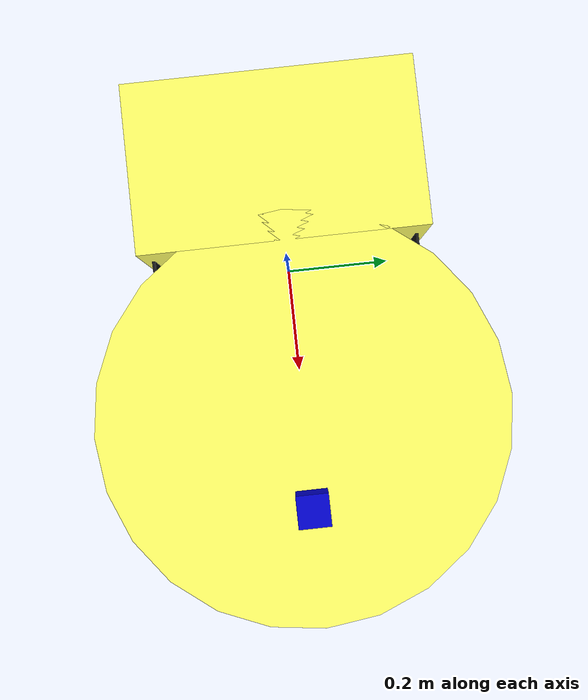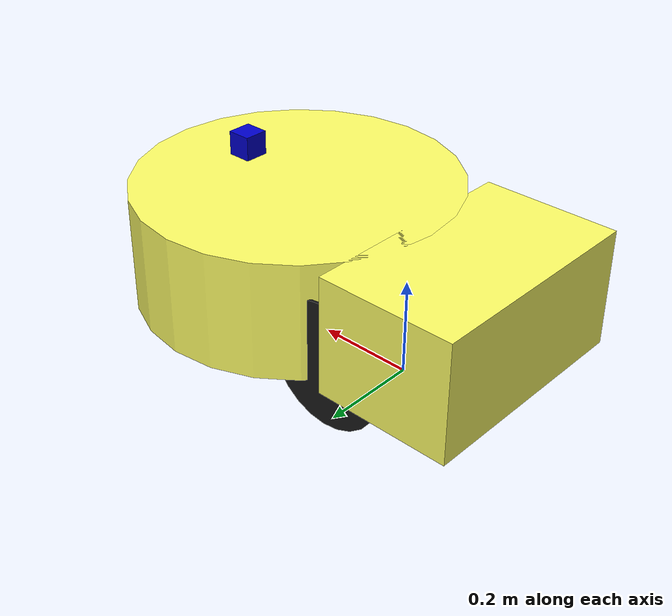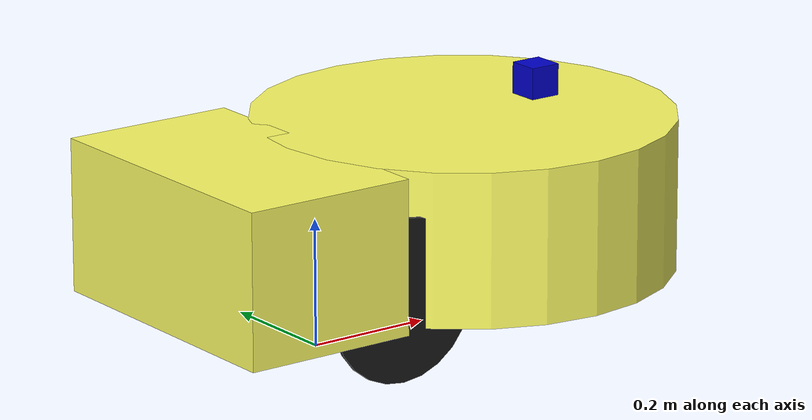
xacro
<?xml version="1.0"?>

<robot xmlns:xacro="http://ros.org/wiki/xacro" name="rl500">

  <xacro:property name="M_PI" value="3.1415926535897931" />

  <material name="yellow">
    <color rgba="1.0 1.0 0.4 1"/>
  </material>
  <material name="blue">
    <color rgba="0 0 0.8 1"/>
  </material>
  <material name="black">
    <color rgba="0.1 0.1 0.1 1"/>
  </material>
  <material name="green">
    <color rgba="0.0 0.8 0.0 1.0"/>
  </material>

  <!-- default inertial macros -->
  <xacro:macro name="default_body_inertial">
	  <inertial>
	    <mass value="10" />
	    <origin xyz="0 0 0.0" />
	    <inertia ixx="0.1" ixy="0.0" ixz="0.0" iyy="0.1" iyz="0.0" izz="0.5" />
    </inertial>
  </xacro:macro>
  <xacro:macro name="default_small_inertial">
	  <inertial>
	    <mass value="0.5" />
	    <origin xyz="0 0 0.0" />
	    <inertia ixx="0.01" ixy="0.0" ixz="0.0" iyy="0.01" iyz="0.0" izz="0.01" />
    </inertial>
  </xacro:macro>
  <xacro:macro name="sensor_inertial">
    <inertial>
      <mass value="0.01" />
      <origin xyz="0 0 0" rpy="0 0 0" />
      <inertia ixx="0.0001" ixy="0" ixz="0" iyy="0.000001" iyz="0" izz="0.0001" />
    </inertial>
  </xacro:macro>

  <xacro:macro name="sensor_visual">
    <visual>
      <geometry>
        <box size="0.05 0.05 0.05" />
      </geometry>
      <material name="blue" />
    </visual>
  </xacro:macro>

<!--
  base_link is a fictitious link(frame) that is on the ground right below base_link origin,
  navigation stack depends on this frame
-->
  <link name="base_link">
    <visual>
      <origin xyz="0 0 0.010" rpy="0 0 0" />
	      <geometry>
	        <box size="0.05 0.05 0.001" />
	      </geometry>
	      <material name="green" />
	  </visual>
	  <collision>
	    <origin xyz="0 0 0.010" rpy="0 0 0" />
	    <geometry>
	     <box size="0.05 0.05 0.001" />
	    </geometry>
	  </collision>
  </link>

  <xacro:macro name="battery_box_size">
      <geometry>
        <box size="0.279 0.475 0.241" />
      </geometry>
  </xacro:macro>

  <link name="battery_box_link">
    <visual>
      <xacro:battery_box_size/>
      <material name="yellow"/>
    </visual>
    <collision>
      <xacro:battery_box_size/>
    </collision>
    <xacro:default_body_inertial/>
  </link>

  <gazebo reference="battery_box_link">
    <material>Gazebo/Yellow</material>
  </gazebo>

  <joint name="base_link_joint" type="fixed">
    <origin xyz="-0.140 0 0.2" rpy="0 0 0"/>
    <parent link="base_link"/>
    <child link="battery_box_link" />
  </joint>

  <xacro:macro name="mowing_head_size">
    <geometry>
      <cylinder length="0.241" radius="0.33"/>
    </geometry>
  </xacro:macro>

  <link name="mowing_head_link">
    <visual>
      <xacro:mowing_head_size/>
      <material name="yellow"/>
    </visual>
    <collision>
      <xacro:mowing_head_size/>
    </collision>
    <xacro:default_body_inertial/>
  </link>

  <gazebo reference="mowing_head_link">
    <material>Gazebo/Yellow</material>
  </gazebo>

  <joint name="body_joint" type="fixed">
    <origin xyz="0.42 0 0" rpy="0 0 0"/>
    <parent link="battery_box_link" />
    <child link="mowing_head_link"/>
  </joint>

  <xacro:macro name="castor_size">
    <geometry>
      <sphere radius="0.038"/>
    </geometry>
  </xacro:macro>

  <link name="castor_link">
    <visual>
      <xacro:castor_size/>
      <material name="black" />
    </visual>
    <collision>
      <xacro:castor_size/>
    </collision>
    <xacro:default_small_inertial/>
  </link>

  <gazebo reference="castor_link">
    <material>Gazebo/Grey</material>
  </gazebo>

  <joint name="castor_joint" type="fixed">
    <origin xyz="0.3 0 -0.159" rpy="0 0 0"/>
    <parent link="mowing_head_link"/>
    <child link="castor_link" />
  </joint>

  <xacro:macro name="wheel_size">
    <geometry>
      <cylinder length="0.005" radius="0.127"/>
    </geometry>
    <origin xyz="0 0 0" rpy="${M_PI/2} 0 0"/>
  </xacro:macro>

  <xacro:macro name="wheel" params="prefix reflect">

    <link name="${prefix}_wheel_link">
      <visual>
        <xacro:wheel_size/>
        <material name="black" />
      </visual>
      <collision>
        <xacro:wheel_size/>
      </collision>
      <xacro:default_small_inertial/>
    </link>

    <joint name="${prefix}_wheel_joint" type="continuous">
      <origin xyz="0.140 ${reflect*0.222} -0.070" rpy="0 0 0"/>
      <axis rpy="0 0 0" xyz="0 1 0" />
      <parent link="battery_box_link" />
      <child link="${prefix}_wheel_link"/>
    </joint>

    <!-- This block provides the simulator (Gazebo) with information on a few additional
    physical properties. See http://gazebosim.org/tutorials/?tut=ros_urdf for more-->
    <gazebo reference="${prefix}_wheel_link">
      <mu1 value="200.0"/>
      <mu2 value="100.0"/>
      <kp value="10000000.0" />
      <kd value="1.0" />
      <material>Gazebo/Grey</material>
    </gazebo>

    <!-- This block connects the wheel joint to an actuator (motor), which informs both
    simulation and visualization of the robot -->
    <transmission name="${prefix}_wheel_trans">
      <type>transmission_interface/SimpleTransmission</type>
      <actuator name="${prefix}_wheel_motor">
        <mechanicalReduction>1</mechanicalReduction>
      </actuator>
      <joint name="${prefix}_wheel_joint">
        <hardwareInterface>hardware_interface/VelocityJointInterface</hardwareInterface>
      </joint>
    </transmission>

  </xacro:macro>

  <xacro:wheel prefix="left" reflect="1" />
  <xacro:wheel prefix="right" reflect="-1" />

  <link name="imu_link">
    <xacro:sensor_visual/>
    <xacro:sensor_inertial/>
  </link>
  <gazebo reference="imu_link">
    <material>Gazebo/Blue</material>
  </gazebo>

  <joint name="imu_joint" type="fixed">
    <axis xyz="0 1 0" />
    <origin xyz="-0.18 -0.08 0.1" rpy="0 0 0" />
    <parent link="base_link"/>
    <child link="imu_link"/>
  </joint>

  <link name="gps_link">
    <xacro:sensor_visual/>
    <xacro:sensor_inertial/>
  </link>
  <gazebo reference="gps_link">
    <material>Gazebo/Blue</material>
  </gazebo>

  <joint name="gps_joint" type="fixed">
    <origin xyz="0.42 0.0 0.35" rpy="0 0 0" />
    <parent link="base_link" />
    <child link="gps_link" />
  </joint>

  <!-- No Lidar at present -->
  <!-- hokuyo -->

	  <gazebo>
	    <plugin name="imu_controller" filename="libgazebo_ros_imu.so">
	      <alwaysOn>true</alwaysOn>
	      <updateRate>30</updateRate>
	      <bodyName>imu</bodyName>
	      <topicName>imu/data</topicName>
        <serviceName>imu/is_calibrated</serviceName>
	      <gaussianNoise>${0.0017*0.0017}</gaussianNoise>
        <xyzOffsets>0 0 0</xyzOffsets>
        <rpyOffsets>0 0 0</rpyOffsets>
      </plugin>
	  </gazebo>

  <gazebo>
    <plugin name="gps_controller" filename="libhector_gazebo_ros_gps.so">
      <updateRate>200</updateRate>
      <robotNamespace>/rl500</robotNamespace>
      <bodyName>gps</bodyName>
      <frameId>/map</frameId>
      <referenceLatitude>33.157589</referenceLatitude>
      <referenceLongitude>-96.936600</referenceLongitude>
    </plugin>
  </gazebo>

  <gazebo>
    <plugin name="gazebo_ros_control" filename="libgazebo_ros_control.so">
      <robotNamespace>/</robotNamespace>
    </plugin>
  </gazebo>

</robot>
